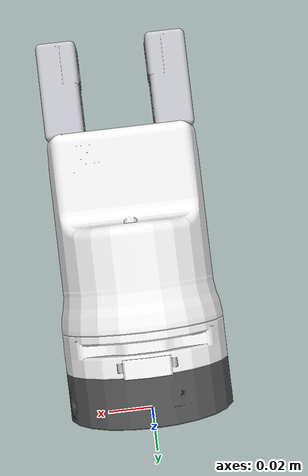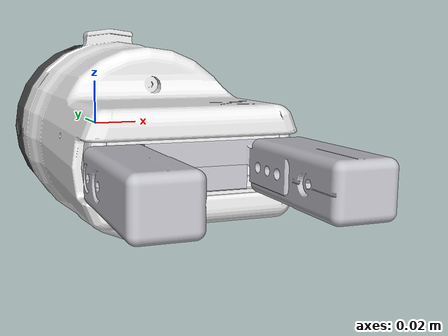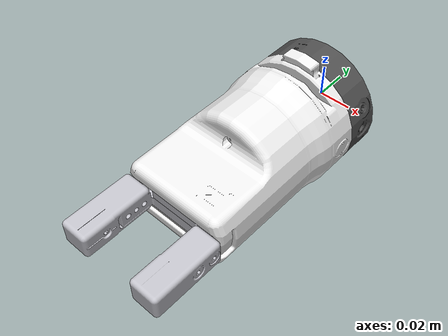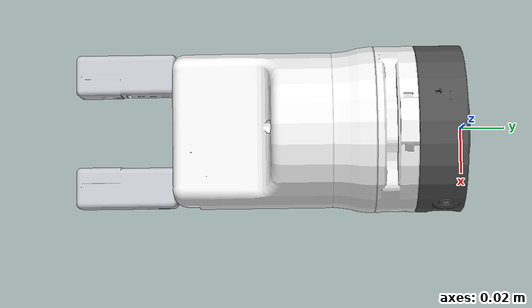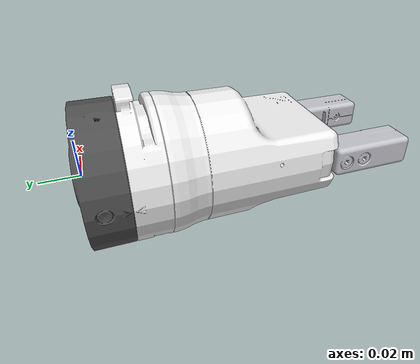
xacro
<?xml version="1.0" ?>

<robot name="hand" xmlns:xacro="http://www.ros.org/wiki/xacro">
    <!-- Ajout des différentes pièces de la pinces / couleurs définies dans le fichier materials.xacro-->
    <link name="adaptater_plate_link">
      <visual>
        <geometry>
          <mesh filename="package://mfja_motoman_hc10/meshes/hand/left/LWR50F-17-04-A.stl" scale="0.001 0.001 0.001"/>
        </geometry>
        <material name="dark_gray"/>
      </visual>
      <collision>
        <geometry>
          <mesh filename="package://mfja_motoman_hc10/meshes/hand/left/LWR50F-17-04-A.stl" scale="0.001 0.001 0.001"/>
        </geometry>
      </collision>
    </link>
    <link name="end_effector_link">
      <visual>
        <geometry>
          <mesh filename="package://mfja_motoman_hc10/meshes/hand/left/end_effector_LWR50L-03-00001-A.stl" scale="0.001 0.001 0.001"/>
        </geometry>
        <material name="white_smoke"/>
      </visual>
      <collision>
        <geometry>
          <mesh filename="package://mfja_motoman_hc10/meshes/hand/left/end_effector_LWR50L-03-00001-A.stl" scale="0.001 0.001 0.001"/>
        </geometry>
      </collision>
    </link>
    <link name="mors_link1">
        <visual>
          <geometry>
            <mesh filename="package://mfja_motoman_hc10/meshes/hand/left/mors_for_LWR50L-03-00001-A.stl" scale="0.001 0.001 0.001"/>
          </geometry>
          <material name="silver"/>
        </visual>
        <collision>
          <geometry>
            <mesh filename="package://mfja_motoman_hc10/meshes/hand/left/mors_for_LWR50L-03-00001-A.stl" scale="0.001 0.001 0.001"/>
          </geometry>
        </collision>
      </link>
      <link name="mors_link2">
        <visual>
          <geometry>
            <mesh filename="package://mfja_motoman_hc10/meshes/hand/left/mors_for_LWR50L-03-00001-A.stl" scale="0.001 0.001 0.001"/>
          </geometry>
          <material name="silver"/>
        </visual>
        <collision>
          <geometry>
            <mesh filename="package://mfja_motoman_hc10/meshes/hand/left/mors_for_LWR50L-03-00001-A.stl" scale="0.001 0.001 0.001"/>
          </geometry>
        </collision>
      </link>
      <!-- Création des joints  -->
      <joint name="adapatater_plate_end_effector" type="fixed" >
        <origin rpy="0 1.57079 0" xyz="0 -0.039 0" />
        <parent link="adaptater_plate_link" />
        <child link="end_effector_link" />
      </joint>
      <!-- ce joint doit être de type prismatique -->
      <joint name="end_effector_adaptater_mors1" type="fixed" >
        <origin rpy="0 0 0" xyz="0 0 0" />
        <parent link="end_effector_link" />
        <child link="mors_link1" />
      </joint>
      <!-- ce joint doit être de type prismatique -->
      <joint name="end_effector_adaptater_mors2" type="fixed" >
        <origin rpy="0 3.14 0" xyz="0 0 0" />
        <parent link="end_effector_link" />
        <child link="mors_link2" />
      </joint>
</robot>
